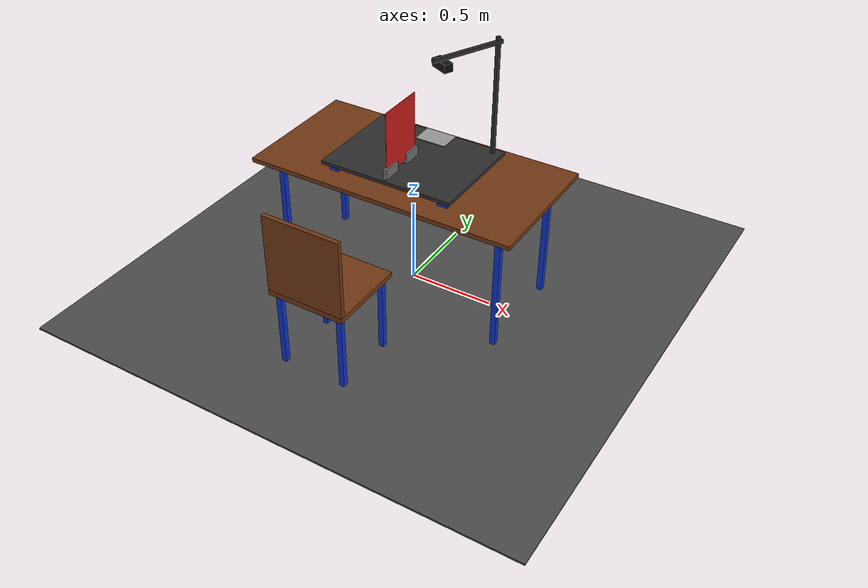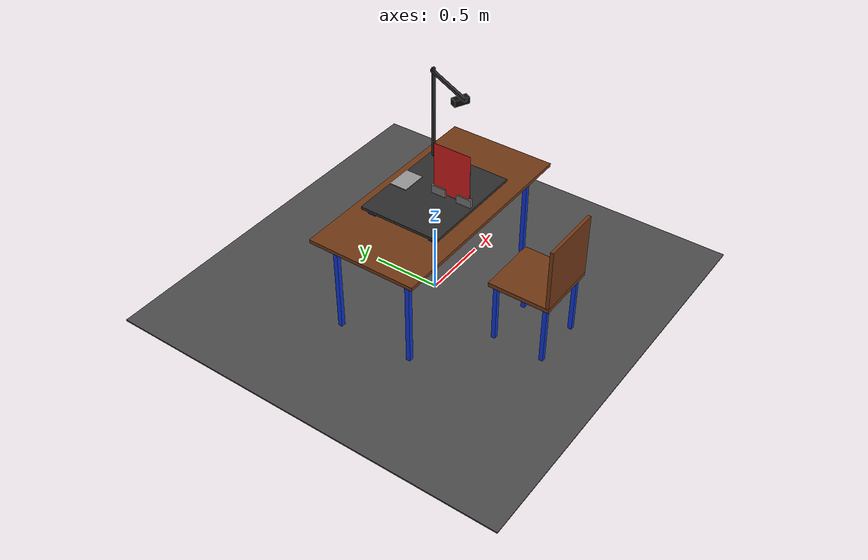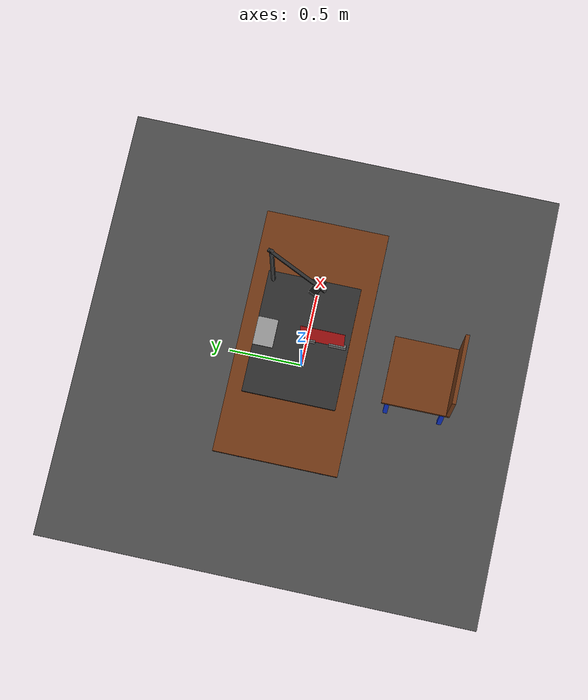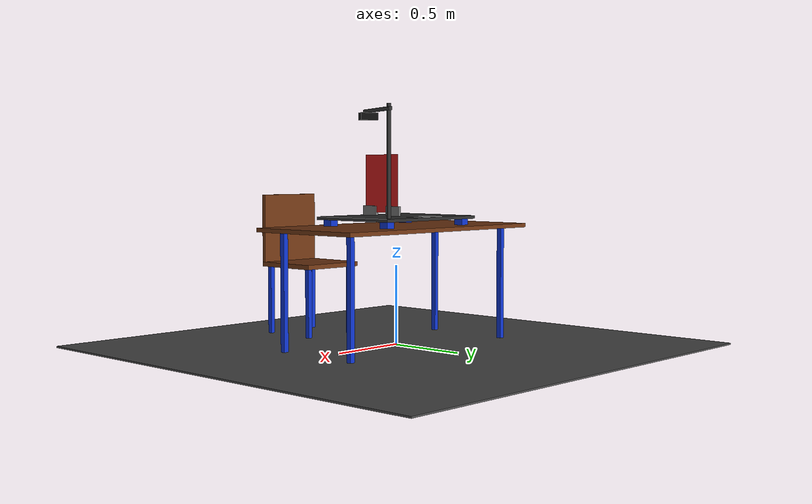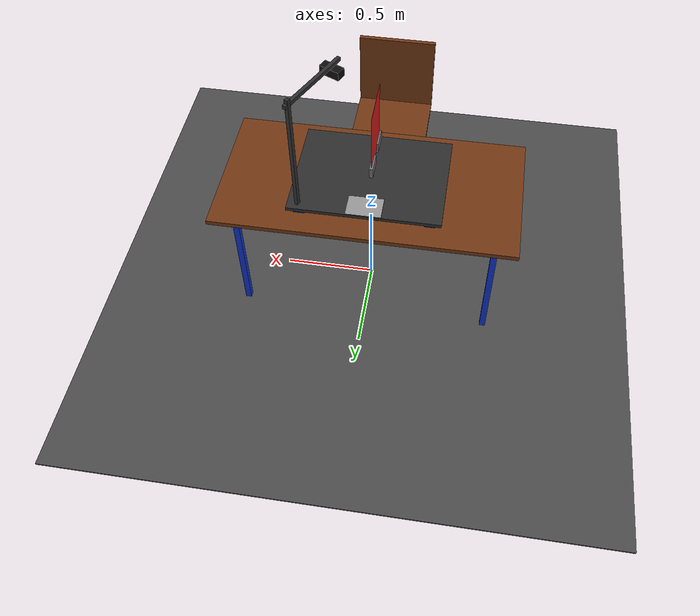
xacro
<?xml version="1.0"?>

<robot xmlns:xacro="http://www.ros.org/wiki/xacro"
       name="a2_workcell">

  <!-- AFMETINGEN IN METERS                                   -->

  <!-- Hoofdtafel -->
  <xacro:property name="table_length" value="1.60"/>
  <xacro:property name="table_depth" value="0.80"/>
  <xacro:property name="table_top_thickness" value="0.025"/>

  <xacro:property name="table_leg_height" value="0.725"/>
  <xacro:property name="table_leg_size" value="0.032"/>
  <xacro:property name="table_leg_edge_offset" value="0.10"/>

  <!-- Verhoogd robotwerkplatform -->
  <xacro:property name="platform_length" value="0.80"/>
  <xacro:property name="platform_depth" value="0.60"/>
  <xacro:property name="platform_thickness" value="0.019"/>

  <!-- Tijdelijke breedte van de steunpoten -->
  <xacro:property name="support_size_x" value="0.060"/>
  <xacro:property name="support_size_y" value="0.060"/>
  <xacro:property name="support_height" value="0.040"/>

  <!-- Metalen plaat onder de Lite 6 -->
  <xacro:property name="mount_plate_length" value="0.185"/>
  <xacro:property name="mount_plate_depth" value="0.130"/>
  <xacro:property name="mount_plate_thickness" value="0.005"/>

  <!-- Stoel -->
  <xacro:property name="chair_width" value="0.45"/>
  <xacro:property name="chair_depth" value="0.45"/>
  <xacro:property name="chair_seat_thickness" value="0.030"/>
  <xacro:property name="chair_leg_height" value="0.450"/>
  <xacro:property name="chair_leg_size" value="0.030"/>
  <xacro:property name="chair_back_height" value="0.450"/>
  <xacro:property name="chair_back_thickness" value="0.025"/>

  <!-- BEREKENDE POSITIES                                     -->

  <!-- Midden van het tafelblad boven de vloer -->
  <xacro:property
      name="table_top_z"
      value="${table_leg_height + table_top_thickness / 2.0}"/>

  <!-- Horizontale posities van de tafelpoten -->
  <xacro:property
      name="table_leg_x"
      value="${table_length / 2.0
              - table_leg_edge_offset
              - table_leg_size / 2.0}"/>

  <xacro:property
      name="table_leg_y"
      value="${table_depth / 2.0
              - table_leg_edge_offset
              - table_leg_size / 2.0}"/>

  <!-- Tafelpoot ten opzichte van midden tafelblad -->
  <xacro:property
      name="table_leg_relative_z"
      value="${-(table_top_thickness / 2.0
                 + table_leg_height / 2.0)}"/>

  <!-- Steunpoten dicht bij de hoeken van het robotplatform -->
  <xacro:property
      name="support_x"
      value="${platform_length / 2.0 - 0.060}"/>

  <xacro:property
      name="support_y"
      value="${platform_depth / 2.0 - 0.060}"/>

  <!-- Steunpoten staan direct op het tafelblad -->
  <xacro:property
      name="support_relative_z"
      value="${table_top_thickness / 2.0
              + support_height / 2.0}"/>

  <!-- Platform rust op de steunpoten -->
  <xacro:property
      name="platform_relative_z"
      value="${table_top_thickness / 2.0
              + support_height
              + platform_thickness / 2.0}"/>

  <!-- Montageplaat ligt op het platform -->
  <xacro:property
      name="mount_plate_relative_z"
      value="${platform_thickness / 2.0
              + mount_plate_thickness / 2.0}"/>

  <!-- MATERIALEN                                             -->

  <material name="brown">
    <color rgba="0.45 0.22 0.08 1.0"/>
  </material>

  <material name="blue">
    <color rgba="0.05 0.20 0.80 1.0"/>
  </material>

  <material name="dark_grey">
    <color rgba="0.18 0.18 0.18 1.0"/>
  </material>

  <material name="metal_grey">
    <color rgba="0.60 0.60 0.60 1.0"/>
  </material>

  <material name="floor_grey">
    <color rgba="0.30 0.30 0.30 1.0"/>
  </material>

    <material name="blocker_red">
    <color rgba="0.8 0.1 0.1 1.0"/>
    </material>

    <material name="standard_gray">
    <color rgba="0.45 0.45 0.45 1.0"/>
    </material>

  <!-- HERBRUIKBARE BOX-MACRO                                 -->

  <xacro:macro
      name="box_link"
      params="name size_x size_y size_z material_name">

    <link name="${name}">

      <visual>
        <origin xyz="0 0 0" rpy="0 0 0"/>

        <geometry>
          <box size="${size_x} ${size_y} ${size_z}"/>
        </geometry>

        <material name="${material_name}"/>
      </visual>

      <collision>
        <origin xyz="0 0 0" rpy="0 0 0"/>

        <geometry>
          <box size="${size_x} ${size_y} ${size_z}"/>
        </geometry>
      </collision>

    </link>

  </xacro:macro>

  <!-- ROOT EN VLOER                                          -->

  <link name="environment_root"/>

  <xacro:box_link
      name="floor"
      size_x="3.0"
      size_y="3.0"
      size_z="0.01"
      material_name="floor_grey"/>

  <joint name="environment_root_to_floor" type="fixed">
    <parent link="environment_root"/>
    <child link="floor"/>

    <origin xyz="0 0 -0.005" rpy="0 0 0"/>
  </joint>

  <!-- TAFELBLAD                                              -->

  <xacro:box_link
      name="table_top"
      size_x="${table_length}"
      size_y="${table_depth}"
      size_z="${table_top_thickness}"
      material_name="brown"/>

  <joint name="environment_root_to_table_top" type="fixed">
    <parent link="environment_root"/>
    <child link="table_top"/>

    <origin xyz="0 0 ${table_top_z}" rpy="0 0 0"/>
  </joint>

  <!-- VIER TAFELPOTEN                                        -->

  <xacro:box_link
      name="table_leg_front_left"
      size_x="${table_leg_size}"
      size_y="${table_leg_size}"
      size_z="${table_leg_height}"
      material_name="blue"/>

  <joint name="table_top_to_leg_front_left" type="fixed">
    <parent link="table_top"/>
    <child link="table_leg_front_left"/>

    <origin
        xyz="${table_leg_x}
             ${-table_leg_y}
             ${table_leg_relative_z}"
        rpy="0 0 0"/>
  </joint>

  <xacro:box_link
      name="table_leg_front_right"
      size_x="${table_leg_size}"
      size_y="${table_leg_size}"
      size_z="${table_leg_height}"
      material_name="blue"/>

  <joint name="table_top_to_leg_front_right" type="fixed">
    <parent link="table_top"/>
    <child link="table_leg_front_right"/>

    <origin
        xyz="${-table_leg_x}
             ${-table_leg_y}
             ${table_leg_relative_z}"
        rpy="0 0 0"/>
  </joint>

  <xacro:box_link
      name="table_leg_back_left"
      size_x="${table_leg_size}"
      size_y="${table_leg_size}"
      size_z="${table_leg_height}"
      material_name="blue"/>

  <joint name="table_top_to_leg_back_left" type="fixed">
    <parent link="table_top"/>
    <child link="table_leg_back_left"/>

    <origin
        xyz="${table_leg_x}
             ${table_leg_y}
             ${table_leg_relative_z}"
        rpy="0 0 0"/>
  </joint>

  <xacro:box_link
      name="table_leg_back_right"
      size_x="${table_leg_size}"
      size_y="${table_leg_size}"
      size_z="${table_leg_height}"
      material_name="blue"/>

  <joint name="table_top_to_leg_back_right" type="fixed">
    <parent link="table_top"/>
    <child link="table_leg_back_right"/>

    <origin
        xyz="${-table_leg_x}
             ${table_leg_y}
             ${table_leg_relative_z}"
        rpy="0 0 0"/>
  </joint>

  <!-- STEUNPOTEN OP HET TAFELBLAD                            -->

  <xacro:box_link
      name="platform_support_front_left"
      size_x="${support_size_x}"
      size_y="${support_size_y}"
      size_z="${support_height}"
      material_name="blue"/>

  <joint name="table_top_to_platform_support_front_left"
         type="fixed">

    <parent link="table_top"/>
    <child link="platform_support_front_left"/>

    <origin
        xyz="${support_x}
             ${-support_y}
             ${support_relative_z}"
        rpy="0 0 0"/>
  </joint>

  <xacro:box_link
      name="platform_support_front_right"
      size_x="${support_size_x}"
      size_y="${support_size_y}"
      size_z="${support_height}"
      material_name="blue"/>

  <joint name="table_top_to_platform_support_front_right"
         type="fixed">

    <parent link="table_top"/>
    <child link="platform_support_front_right"/>

    <origin
        xyz="${-support_x}
             ${-support_y}
             ${support_relative_z}"
        rpy="0 0 0"/>
  </joint>

  <xacro:box_link
      name="platform_support_back_left"
      size_x="${support_size_x}"
      size_y="${support_size_y}"
      size_z="${support_height}"
      material_name="blue"/>

  <joint name="table_top_to_platform_support_back_left"
         type="fixed">

    <parent link="table_top"/>
    <child link="platform_support_back_left"/>

    <origin
        xyz="${support_x}
             ${support_y}
             ${support_relative_z}"
        rpy="0 0 0"/>
  </joint>

  <xacro:box_link
      name="platform_support_back_right"
      size_x="${support_size_x}"
      size_y="${support_size_y}"
      size_z="${support_height}"
      material_name="blue"/>

  <joint name="table_top_to_platform_support_back_right"
         type="fixed">

    <parent link="table_top"/>
    <child link="platform_support_back_right"/>

    <origin
        xyz="${-support_x}
             ${support_y}
             ${support_relative_z}"
        rpy="0 0 0"/>
  </joint>

  <!-- ROBOTWERKPLATFORM                                      -->

  <xacro:box_link
      name="workcell_platform"
      size_x="${platform_length}"
      size_y="${platform_depth}"
      size_z="${platform_thickness}"
      material_name="dark_grey"/>

  <joint name="table_top_to_workcell_platform" type="fixed">
    <parent link="table_top"/>
    <child link="workcell_platform"/>

    <origin
        xyz="0 0 ${platform_relative_z}"
        rpy="0 0 0"/>
  </joint>

  <!-- ROBOTMONTAGEPLAAT                                      -->

  <xacro:box_link
      name="robot_mounting_plate"
      size_x="${mount_plate_length}"
      size_y="${mount_plate_depth}"
      size_z="${mount_plate_thickness}"
      material_name="metal_grey"/>

  <joint name="workcell_platform_to_mounting_plate"
         type="fixed">

    <parent link="workcell_platform"/>
    <child link="robot_mounting_plate"/>

    <origin
        xyz="0 0.235 ${mount_plate_relative_z}"
        rpy="0 0 0"/>
  </joint>

  <!--
    Referentieframe op de bovenkant van de montageplaat.
    Hier moet later de officiële Lite 6-base aan gekoppeld worden.
  -->

  <link name="robot_mount_frame"/>

  <joint name="mounting_plate_to_robot_mount_frame"
         type="fixed">

    <parent link="robot_mounting_plate"/>
    <child link="robot_mount_frame"/>

    <origin
        xyz="0 0 ${mount_plate_thickness / 2.0}"
        rpy="0 0 0"/>
  </joint>

  <!-- STOEL VOOR DE TAFEL                                    -->

  <xacro:box_link
      name="chair_seat"
      size_x="${chair_width}"
      size_y="${chair_depth}"
      size_z="${chair_seat_thickness}"
      material_name="brown"/>

  <joint name="environment_root_to_chair_seat" type="fixed">
    <parent link="environment_root"/>
    <child link="chair_seat"/>

    <origin
        xyz="0
             -0.80
             ${chair_leg_height + chair_seat_thickness / 2.0}"
        rpy="0 0 3.14159"/>
  </joint>

  <!-- Stoelpoot linksvoor -->

  <xacro:box_link
      name="chair_leg_front_left"
      size_x="${chair_leg_size}"
      size_y="${chair_leg_size}"
      size_z="${chair_leg_height}"
      material_name="blue"/>

  <joint name="chair_seat_to_leg_front_left" type="fixed">
    <parent link="chair_seat"/>
    <child link="chair_leg_front_left"/>

    <origin
        xyz="${chair_width / 2.0 - 0.04}
             ${-chair_depth / 2.0 + 0.04}
             ${-(chair_seat_thickness / 2.0
                + chair_leg_height / 2.0)}"
        rpy="0 0 0"/>
  </joint>

  <!-- Stoelpoot rechtsvoor -->

  <xacro:box_link
      name="chair_leg_front_right"
      size_x="${chair_leg_size}"
      size_y="${chair_leg_size}"
      size_z="${chair_leg_height}"
      material_name="blue"/>

  <joint name="chair_seat_to_leg_front_right" type="fixed">
    <parent link="chair_seat"/>
    <child link="chair_leg_front_right"/>

    <origin
        xyz="${-chair_width / 2.0 + 0.04}
             ${-chair_depth / 2.0 + 0.04}
             ${-(chair_seat_thickness / 2.0
                + chair_leg_height / 2.0)}"
        rpy="0 0 0"/>
  </joint>

  <!-- Stoelpoot linksachter -->

  <xacro:box_link
      name="chair_leg_back_left"
      size_x="${chair_leg_size}"
      size_y="${chair_leg_size}"
      size_z="${chair_leg_height}"
      material_name="blue"/>

  <joint name="chair_seat_to_leg_back_left" type="fixed">
    <parent link="chair_seat"/>
    <child link="chair_leg_back_left"/>

    <origin
        xyz="${chair_width / 2.0 - 0.04}
             ${chair_depth / 2.0 - 0.04}
             ${-(chair_seat_thickness / 2.0
                + chair_leg_height / 2.0)}"
        rpy="0 0 0"/>
  </joint>

  <!-- Stoelpoot rechtsachter -->

  <xacro:box_link
      name="chair_leg_back_right"
      size_x="${chair_leg_size}"
      size_y="${chair_leg_size}"
      size_z="${chair_leg_height}"
      material_name="blue"/>

  <joint name="chair_seat_to_leg_back_right" type="fixed">
    <parent link="chair_seat"/>
    <child link="chair_leg_back_right"/>

    <origin
        xyz="${-chair_width / 2.0 + 0.04}
             ${chair_depth / 2.0 - 0.04}
             ${-(chair_seat_thickness / 2.0
                + chair_leg_height / 2.0)}"
        rpy="0 0 0"/>
  </joint>

  <!-- Rugleuning -->

  <xacro:box_link
      name="chair_backrest"
      size_x="${chair_width}"
      size_y="${chair_back_thickness}"
      size_z="${chair_back_height}"
      material_name="brown"/>

  <joint name="chair_seat_to_backrest" type="fixed">
    <parent link="chair_seat"/>
    <child link="chair_backrest"/>

    <origin
        xyz="0
             ${chair_depth / 2.0
               - chair_back_thickness / 2.0}
             ${chair_seat_thickness / 2.0
               + chair_back_height / 2.0}"
        rpy="0 0 0"/>
  </joint>
    <!-- Blocker screen assembly   -->

    <!--
    Invisible assembly frame.
    Move/rotate this frame, and the blocker + standards move together.
    -->
    <link name="blocker_assembly_frame"/>

    <link name="blocker_screen">
    <visual>
        <origin xyz="0 0 0" rpy="0 0 0"/>
        <geometry>
        <box size="0.280 0.001 0.365"/>
        </geometry>
        <material name="blocker_red"/>
    </visual>
    <collision>
        <origin xyz="0 0 0" rpy="0 0 0"/>
        <geometry>
        <box size="0.280 0.001 0.365"/>
        </geometry>
    </collision>
    </link>

    <link name="blocker_standard_left">
    <visual>
        <origin xyz="0 0 0" rpy="0 0 0"/>
        <geometry>
        <box size="0.110 0.020 0.060"/>
        </geometry>
        <material name="standard_gray"/>
    </visual>
    <collision>
        <origin xyz="0 0 0" rpy="0 0 0"/>
        <geometry>
        <box size="0.110 0.020 0.060"/>
        </geometry>
    </collision>
    </link>

    <link name="blocker_standard_right">
    <visual>
        <origin xyz="0 0 0" rpy="0 0 0"/>
        <geometry>
        <box size="0.110 0.020 0.060"/>
        </geometry>
        <material name="standard_gray"/>
    </visual>
    <collision>
        <origin xyz="0 0 0" rpy="0 0 0"/>
        <geometry>
        <box size="0.110 0.020 0.060"/>
        </geometry>
    </collision>
    </link>

    <!--
    Attach the entire blocker assembly to the work platform.
    yaw = 1.5708 rotates the assembly 90 degrees so local X → world Y.
    -->
    <joint name="blocker_assembly_joint" type="fixed">
    <parent link="workcell_platform"/>
    <child link="blocker_assembly_frame"/>
    <origin xyz="0.000 -0.130 0.000" rpy="0 0 1.5708"/>
    </joint>

    <joint name="blocker_standard_left_joint" type="fixed">
    <parent link="blocker_assembly_frame"/>
    <child link="blocker_standard_left"/>
    <origin xyz="-0.0985 0.000 0.0395" rpy="0 0 0"/>
    </joint>

    <joint name="blocker_standard_right_joint" type="fixed">
    <parent link="blocker_assembly_frame"/>
    <child link="blocker_standard_right"/>
    <origin xyz="0.0985 0.000 0.0395" rpy="0 0 0"/>
    </joint>

    <joint name="blocker_screen_joint" type="fixed">
    <parent link="blocker_assembly_frame"/>
    <child link="blocker_screen"/>
    <origin xyz="0.000 0.000 0.2110" rpy="0 0 0"/>
    </joint>

  <!-- CAMERA STANDAARD                                       -->
  <!-- Yaw = 65°. Applied once at the pole base; bar and camera rotate with it. -->
  <xacro:property name="camera_stand_yaw" value="${65.0 * pi / 180.0}"/>

  <!-- Staande paal: 2×2×67.7 cm vierkant profiel -->
  <link name="camera_pole">
    <visual>
      <origin xyz="0 0 0" rpy="0 0 0"/>
      <geometry>
        <box size="0.020 0.020 0.677"/>
      </geometry>
      <material name="dark_grey"/>
    </visual>
    <collision>
      <origin xyz="0 0 0" rpy="0 0 0"/>
      <geometry>
        <box size="0.020 0.020 0.677"/>
      </geometry>
    </collision>
  </link>

  <!-- Positie: 5.5 cm van rechterrand (X=0.40) en 4 cm van achterrand (Y=0.30). -->
  <joint name="workcell_platform_to_camera_pole" type="fixed">
    <parent link="workcell_platform"/>
    <child link="camera_pole"/>
    <origin
        xyz="0.345 0.260 ${platform_thickness / 2.0 + 0.677 / 2.0}"
        rpy="0 0 ${camera_stand_yaw}"/>
  </joint>

  <!--
    Zijdelingse balk: 2×2×43 cm.
    Centrum op x=−0.189 m (van de paalas), z=+0.3085 m (van het paalcentrum).
  -->
  <link name="camera_bar">
    <visual>
      <origin xyz="-0.189 0 0" rpy="0 0 0"/>
      <geometry>
        <box size="0.430 0.020 0.020"/>
      </geometry>
      <material name="dark_grey"/>
    </visual>
    <collision>
      <origin xyz="-0.189 0 0" rpy="0 0 0"/>
      <geometry>
        <box size="0.430 0.020 0.020"/>
      </geometry>
    </collision>
  </link>

  <joint name="camera_pole_to_bar" type="fixed">
    <parent link="camera_pole"/>
    <child link="camera_bar"/>
    <origin xyz="0 0 0.3085" rpy="0 0 0"/>
  </joint>

  <!-- Camera body: 5×11×4.5 cm, hangt onder de balk -->
  <link name="camera_body">
    <visual>
      <origin xyz="0 0 0" rpy="0 0 0"/>
      <geometry>
        <box size="0.050 0.110 0.045"/>
      </geometry>
      <material name="camera_black">
        <color rgba="0.05 0.05 0.05 1.0"/>
      </material>
    </visual>
    <collision>
      <origin xyz="0 0 0" rpy="0 0 0"/>
      <geometry>
        <box size="0.050 0.110 0.045"/>
      </geometry>
    </collision>
  </link>

  <joint name="camera_bar_to_camera" type="fixed">
    <parent link="camera_bar"/>
    <child link="camera_body"/>
    <origin xyz="-0.343 0 ${-(0.020 / 2.0 + 0.045 / 2.0)}" rpy="0 0 0"/>
  </joint>

</robot>
